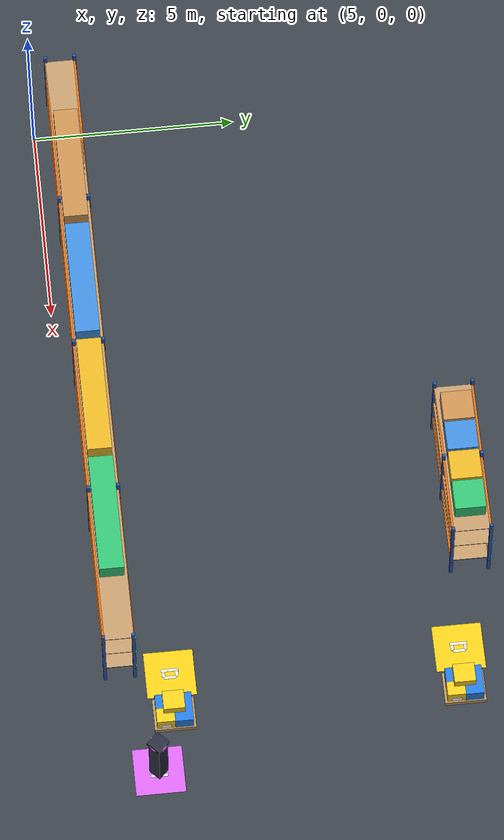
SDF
<sdf version="1.10">
 <world name="warehouse_s1">
  <model name="ground_plane">
   <static>true</static>
   <link name="link">
    <collision name="collision">
     <geometry><plane><normal>0 0 1</normal><size>25 20</size></plane></geometry>
    </collision>
    <visual name="visual">
     <geometry><plane><normal>0 0 1</normal><size>25 20</size></plane></geometry>
     <material>
      <ambient>0.22 0.25 0.28 1</ambient>
      <diffuse>0.22 0.25 0.28 1</diffuse>
      <specular>0.08 0.08 0.08 1</specular>
     </material>
    </visual>
    <pose>12.0 9.5 0 0 0 0</pose>
   </link>
  </model>
  <model name="pad_s1_dropoff_1">
   <static>true</static>
   <pose>20.000 2.000 0.003 0 0 0</pose>
   <link name="link">
    <visual name="pad_surface">
     <geometry><box><size>1.10 1.10 0.004</size></box></geometry>
     <material>
      <ambient>0.65 0.35 0.05 1</ambient>
      <diffuse>0.90 0.55 0.08 1</diffuse>
      <specular>0.4 0.4 0.4 1</specular>
     </material>
    </visual>
    <visual name="pad_border">
     <pose>0 0 0.002 0 0 0</pose>
     <geometry><box><size>1.20 1.20 0.002</size></box></geometry>
     <material><ambient>0.98 0.75 0.08 1</ambient><diffuse>1.0 0.80 0.10 1</diffuse></material>
    </visual>
    <visual name="stencil_d_vert">
     <pose>-0.10 0 0.005 0 0 0</pose>
     <geometry><box><size>0.07 0.42 0.003</size></box></geometry>
     <material><ambient>1 1 1 1</ambient><diffuse>1 1 1 1</diffuse><specular>0.5 0.5 0.5 1</specular></material>
    </visual>
    <visual name="stencil_d_top">
     <pose>0.0 0.16 0.005 0 0 0</pose>
     <geometry><box><size>0.15 0.07 0.003</size></box></geometry>
     <material><ambient>1 1 1 1</ambient><diffuse>1 1 1 1</diffuse><specular>0.5 0.5 0.5 1</specular></material>
    </visual>
    <visual name="stencil_d_bot">
     <pose>0.0 -0.16 0.005 0 0 0</pose>
     <geometry><box><size>0.15 0.07 0.003</size></box></geometry>
     <material><ambient>1 1 1 1</ambient><diffuse>1 1 1 1</diffuse><specular>0.5 0.5 0.5 1</specular></material>
    </visual>
    <visual name="stencil_d_right">
     <pose>0.09 0 0.005 0 0 0</pose>
     <geometry><box><size>0.07 0.30 0.003</size></box></geometry>
     <material><ambient>1 1 1 1</ambient><diffuse>1 1 1 1</diffuse><specular>0.5 0.5 0.5 1</specular></material>
    </visual>
   </link>
  </model>
  <model name="s1_cargo_dropoff_1">
   <static>true</static>
   <pose>21.100 2.000 0.0 0 0 0.0000</pose>
   <link name="link">
    <visual name="pallet_base">
     <pose>0 0 0.07 0 0 0</pose>
     <geometry><box><size>0.80 1.00 0.14</size></box></geometry>
     <material><ambient>0.58 0.46 0.30 1</ambient><diffuse>0.72 0.58 0.38 1</diffuse></material>
    </visual>
    <visual name="box_ll">
     <pose>-0.18 -0.22 0.32 0 0 0</pose>
     <geometry><box><size>0.36 0.44 0.36</size></box></geometry>
     <material>
      <ambient>0.12 0.38 0.72 1</ambient>
      <diffuse>0.15 0.48 0.88 1</diffuse>
      <specular>0.3 0.3 0.3 1</specular>
     </material>
    </visual>
    <visual name="box_lr">
     <pose>0.18 -0.22 0.32 0 0 0</pose>
     <geometry><box><size>0.36 0.44 0.36</size></box></geometry>
     <material><ambient>0.88 0.70 0.08 1</ambient><diffuse>0.96 0.80 0.12 1</diffuse></material>
    </visual>
    <visual name="box_top">
     <pose>0 0.22 0.32 0 0 0</pose>
     <geometry><box><size>0.74 0.44 0.36</size></box></geometry>
     <material>
      <ambient>0.12 0.38 0.72 1</ambient>
      <diffuse>0.15 0.48 0.88 1</diffuse>
      <specular>0.3 0.3 0.3 1</specular>
     </material>
    </visual>
    <visual name="box_upper">
     <pose>-0.10 0.0 0.62 0 0 0</pose>
     <geometry><box><size>0.48 0.52 0.24</size></box></geometry>
     <material><ambient>0.88 0.70 0.08 1</ambient><diffuse>0.96 0.80 0.12 1</diffuse></material>
    </visual>
    <visual name="placard">
     <pose>0.402 -0.22 0.32 0 0 0</pose>
     <geometry><box><size>0.005 0.24 0.16</size></box></geometry>
     <material><ambient>0.95 0.95 0.95 1</ambient><diffuse>0.98 0.98 0.98 1</diffuse></material>
    </visual>
   </link>
  </model>
  <model name="pad_s1_dropoff_3">
   <static>true</static>
   <pose>20.000 9.000 0.003 0 0 0</pose>
   <link name="link">
    <visual name="pad_surface">
     <geometry><box><size>1.10 1.10 0.004</size></box></geometry>
     <material>
      <ambient>0.65 0.35 0.05 1</ambient>
      <diffuse>0.90 0.55 0.08 1</diffuse>
      <specular>0.4 0.4 0.4 1</specular>
     </material>
    </visual>
    <visual name="pad_border">
     <pose>0 0 0.002 0 0 0</pose>
     <geometry><box><size>1.20 1.20 0.002</size></box></geometry>
     <material><ambient>0.98 0.75 0.08 1</ambient><diffuse>1.0 0.80 0.10 1</diffuse></material>
    </visual>
    <visual name="stencil_d_vert">
     <pose>-0.10 0 0.005 0 0 0</pose>
     <geometry><box><size>0.07 0.42 0.003</size></box></geometry>
     <material><ambient>1 1 1 1</ambient><diffuse>1 1 1 1</diffuse><specular>0.5 0.5 0.5 1</specular></material>
    </visual>
    <visual name="stencil_d_top">
     <pose>0.0 0.16 0.005 0 0 0</pose>
     <geometry><box><size>0.15 0.07 0.003</size></box></geometry>
     <material><ambient>1 1 1 1</ambient><diffuse>1 1 1 1</diffuse><specular>0.5 0.5 0.5 1</specular></material>
    </visual>
    <visual name="stencil_d_bot">
     <pose>0.0 -0.16 0.005 0 0 0</pose>
     <geometry><box><size>0.15 0.07 0.003</size></box></geometry>
     <material><ambient>1 1 1 1</ambient><diffuse>1 1 1 1</diffuse><specular>0.5 0.5 0.5 1</specular></material>
    </visual>
    <visual name="stencil_d_right">
     <pose>0.09 0 0.005 0 0 0</pose>
     <geometry><box><size>0.07 0.30 0.003</size></box></geometry>
     <material><ambient>1 1 1 1</ambient><diffuse>1 1 1 1</diffuse><specular>0.5 0.5 0.5 1</specular></material>
    </visual>
   </link>
  </model>
  <model name="s1_cargo_dropoff_3">
   <static>true</static>
   <pose>21.100 9.000 0.0 0 0 0.0000</pose>
   <link name="link">
    <visual name="pallet_base">
     <pose>0 0 0.07 0 0 0</pose>
     <geometry><box><size>0.80 1.00 0.14</size></box></geometry>
     <material><ambient>0.58 0.46 0.30 1</ambient><diffuse>0.72 0.58 0.38 1</diffuse></material>
    </visual>
    <visual name="box_ll">
     <pose>-0.18 -0.22 0.32 0 0 0</pose>
     <geometry><box><size>0.36 0.44 0.36</size></box></geometry>
     <material>
      <ambient>0.12 0.38 0.72 1</ambient>
      <diffuse>0.15 0.48 0.88 1</diffuse>
      <specular>0.3 0.3 0.3 1</specular>
     </material>
    </visual>
    <visual name="box_lr">
     <pose>0.18 -0.22 0.32 0 0 0</pose>
     <geometry><box><size>0.36 0.44 0.36</size></box></geometry>
     <material><ambient>0.88 0.70 0.08 1</ambient><diffuse>0.96 0.80 0.12 1</diffuse></material>
    </visual>
    <visual name="box_top">
     <pose>0 0.22 0.32 0 0 0</pose>
     <geometry><box><size>0.74 0.44 0.36</size></box></geometry>
     <material>
      <ambient>0.12 0.38 0.72 1</ambient>
      <diffuse>0.15 0.48 0.88 1</diffuse>
      <specular>0.3 0.3 0.3 1</specular>
     </material>
    </visual>
    <visual name="box_upper">
     <pose>-0.10 0.0 0.62 0 0 0</pose>
     <geometry><box><size>0.48 0.52 0.24</size></box></geometry>
     <material><ambient>0.88 0.70 0.08 1</ambient><diffuse>0.96 0.80 0.12 1</diffuse></material>
    </visual>
    <visual name="placard">
     <pose>0.402 -0.22 0.32 0 0 0</pose>
     <geometry><box><size>0.005 0.24 0.16</size></box></geometry>
     <material><ambient>0.95 0.95 0.95 1</ambient><diffuse>0.98 0.98 0.98 1</diffuse></material>
    </visual>
   </link>
  </model>
  <model name="pad_s1_charge_se">
   <static>true</static>
   <pose>22.500 1.500 0.003 0 0 0</pose>
   <link name="link">
    <visual name="pad_surface">
     <geometry><box><size>1.10 1.10 0.004</size></box></geometry>
     <material>
      <ambient>0.40 0.15 0.65 1</ambient>
      <diffuse>0.65 0.25 0.95 1</diffuse>
      <specular>0.5 0.5 0.5 1</specular>
     </material>
    </visual>
    <visual name="pad_border">
     <pose>0 0 0.002 0 0 0</pose>
     <geometry><box><size>1.20 1.20 0.002</size></box></geometry>
     <material><ambient>0.80 0.35 1.0 1</ambient><diffuse>0.85 0.40 1.0 1</diffuse></material>
    </visual>
    <visual name="stencil_h_left">
     <pose>-0.12 0 0.005 0 0 0</pose>
     <geometry><box><size>0.07 0.42 0.003</size></box></geometry>
     <material><ambient>1 1 1 1</ambient><diffuse>1 1 1 1</diffuse><specular>0.5 0.5 0.5 1</specular></material>
    </visual>
    <visual name="stencil_h_right">
     <pose>0.12 0 0.005 0 0 0</pose>
     <geometry><box><size>0.07 0.42 0.003</size></box></geometry>
     <material><ambient>1 1 1 1</ambient><diffuse>1 1 1 1</diffuse><specular>0.5 0.5 0.5 1</specular></material>
    </visual>
    <visual name="stencil_h_mid">
     <pose>0 0 0.005 0 0 0</pose>
     <geometry><box><size>0.22 0.07 0.003</size></box></geometry>
     <material><ambient>1 1 1 1</ambient><diffuse>1 1 1 1</diffuse><specular>0.5 0.5 0.5 1</specular></material>
    </visual>
   </link>
  </model>
  <model name="kiosk_s1_charge_se">
   <static>true</static>
   <pose>22.500 1.500 0.0 0 0 -2.3560</pose>
   <link name="link">
    <visual name="pillar">
     <pose>0 0 0.80 0 0 0</pose>
     <geometry><box><size>0.32 0.32 1.60</size></box></geometry>
     <material>
      <ambient>0.12 0.14 0.18 1</ambient>
      <diffuse>0.16 0.18 0.24 1</diffuse>
      <specular>0.4 0.4 0.4 1</specular>
     </material>
    </visual>
    <visual name="cap">
     <pose>0 0 1.64 0 0 0</pose>
     <geometry><box><size>0.38 0.38 0.08</size></box></geometry>
     <material>
      <ambient>0.12 0.14 0.18 1</ambient>
      <diffuse>0.16 0.18 0.24 1</diffuse>
      <specular>0.4 0.4 0.4 1</specular>
     </material>
    </visual>
    <visual name="halo_ring">
     <pose>0 0 1.61 0 0 0</pose>
     <geometry><cylinder><radius>0.22</radius><length>0.05</length></cylinder></geometry>
     <material>
      <ambient>0.75 0.25 0.95 1</ambient>
      <diffuse>0.85 0.35 1.0 1</diffuse>
      <specular>1 1 1 1</specular>
     </material>
    </visual>
    <visual name="screen">
     <pose>0.162 0 1.10 0 0 0</pose>
     <geometry><box><size>0.008 0.22 0.32</size></box></geometry>
     <material>
      <ambient>0.0 0.85 1.0 1</ambient>
      <diffuse>0.0 0.95 1.0 1</diffuse>
      <specular>0.8 0.8 0.8 1</specular>
     </material>
    </visual>
   </link>
  </model>
  <model name="s1_rack_center_right">
   <static>true</static>
   <pose>16.000 9.500 0.000 0 0 0.0000</pose>
   <link name="link">
    <visual name="post_1">
     <pose>-1.960 -0.460 1.200 0 0 0</pose>
     <geometry><box><size>0.08 0.08 2.400</size></box></geometry>
     <material>
      <ambient>0.10 0.20 0.45 1</ambient>
      <diffuse>0.15 0.32 0.68 1</diffuse>
      <specular>0.3 0.3 0.3 1</specular>
     </material>
    </visual>
    <visual name="post_2">
     <pose>-1.960 0.460 1.200 0 0 0</pose>
     <geometry><box><size>0.08 0.08 2.400</size></box></geometry>
     <material>
      <ambient>0.10 0.20 0.45 1</ambient>
      <diffuse>0.15 0.32 0.68 1</diffuse>
      <specular>0.3 0.3 0.3 1</specular>
     </material>
    </visual>
    <visual name="post_3">
     <pose>1.960 -0.460 1.200 0 0 0</pose>
     <geometry><box><size>0.08 0.08 2.400</size></box></geometry>
     <material>
      <ambient>0.10 0.20 0.45 1</ambient>
      <diffuse>0.15 0.32 0.68 1</diffuse>
      <specular>0.3 0.3 0.3 1</specular>
     </material>
    </visual>
    <visual name="post_4">
     <pose>1.960 0.460 1.200 0 0 0</pose>
     <geometry><box><size>0.08 0.08 2.400</size></box></geometry>
     <material>
      <ambient>0.10 0.20 0.45 1</ambient>
      <diffuse>0.15 0.32 0.68 1</diffuse>
      <specular>0.3 0.3 0.3 1</specular>
     </material>
    </visual>
    <visual name="post_5">
     <pose>0.000 -0.460 1.200 0 0 0</pose>
     <geometry><box><size>0.08 0.08 2.400</size></box></geometry>
     <material>
      <ambient>0.10 0.20 0.45 1</ambient>
      <diffuse>0.15 0.32 0.68 1</diffuse>
      <specular>0.3 0.3 0.3 1</specular>
     </material>
    </visual>
    <visual name="post_6">
     <pose>0.000 0.460 1.200 0 0 0</pose>
     <geometry><box><size>0.08 0.08 2.400</size></box></geometry>
     <material>
      <ambient>0.10 0.20 0.45 1</ambient>
      <diffuse>0.15 0.32 0.68 1</diffuse>
      <specular>0.3 0.3 0.3 1</specular>
     </material>
    </visual>
    <visual name="beam_front_1">
     <pose>0 -0.460 0.550 0 0 0</pose>
     <geometry><box><size>4.000 0.05 0.08</size></box></geometry>
     <material>
      <ambient>0.85 0.35 0.05 1</ambient>
      <diffuse>0.95 0.45 0.08 1</diffuse>
      <specular>0.2 0.2 0.2 1</specular>
     </material>
    </visual>
    <visual name="beam_back_1">
     <pose>0 0.460 0.550 0 0 0</pose>
     <geometry><box><size>4.000 0.05 0.08</size></box></geometry>
     <material>
      <ambient>0.85 0.35 0.05 1</ambient>
      <diffuse>0.95 0.45 0.08 1</diffuse>
      <specular>0.2 0.2 0.2 1</specular>
     </material>
    </visual>
    <visual name="deck_1">
     <pose>0 0 0.580 0 0 0</pose>
     <geometry><box><size>3.900 0.940 0.02</size></box></geometry>
     <material>
      <ambient>0.60 0.48 0.32 1</ambient>
      <diffuse>0.75 0.60 0.42 1</diffuse>
      <specular>0.1 0.1 0.1 1</specular>
     </material>
    </visual>
    <visual name="cargo_t1_b1">
     <pose>-1.200 0 0.825 0 0 0</pose>
     <geometry><box><size>0.750 0.750 0.450</size></box></geometry>
     <material><ambient>0.75 0.55 0.10 1</ambient><diffuse>0.90 0.70 0.15 1</diffuse></material>
    </visual>
    <visual name="cargo_t1_b2">
     <pose>-0.400 0 0.825 0 0 0</pose>
     <geometry><box><size>0.750 0.750 0.450</size></box></geometry>
     <material><ambient>0.15 0.60 0.35 1</ambient><diffuse>0.20 0.75 0.45 1</diffuse></material>
    </visual>
    <visual name="cargo_t1_b3">
     <pose>0.400 0 0.825 0 0 0</pose>
     <geometry><box><size>0.750 0.750 0.450</size></box></geometry>
     <material><ambient>0.65 0.45 0.25 1</ambient><diffuse>0.78 0.56 0.32 1</diffuse></material>
    </visual>
    <visual name="cargo_t1_b4">
     <pose>1.200 0 0.825 0 0 0</pose>
     <geometry><box><size>0.750 0.750 0.450</size></box></geometry>
     <material><ambient>0.20 0.45 0.70 1</ambient><diffuse>0.25 0.55 0.85 1</diffuse></material>
    </visual>
    <visual name="led_indicator_1">
     <pose>1.960 0.500 0.600 0 0 0</pose>
     <geometry><sphere><radius>0.035</radius></sphere></geometry>
     <material>
      <ambient>0.0 0.85 1.0 1</ambient>
      <diffuse>0.0 0.95 1.0 1</diffuse>
      <specular>1 1 1 1</specular>
     </material>
    </visual>
    <visual name="beam_front_2">
     <pose>0 -0.460 1.350 0 0 0</pose>
     <geometry><box><size>4.000 0.05 0.08</size></box></geometry>
     <material>
      <ambient>0.85 0.35 0.05 1</ambient>
      <diffuse>0.95 0.45 0.08 1</diffuse>
      <specular>0.2 0.2 0.2 1</specular>
     </material>
    </visual>
    <visual name="beam_back_2">
     <pose>0 0.460 1.350 0 0 0</pose>
     <geometry><box><size>4.000 0.05 0.08</size></box></geometry>
     <material>
      <ambient>0.85 0.35 0.05 1</ambient>
      <diffuse>0.95 0.45 0.08 1</diffuse>
      <specular>0.2 0.2 0.2 1</specular>
     </material>
    </visual>
    <visual name="deck_2">
     <pose>0 0 1.380 0 0 0</pose>
     <geometry><box><size>3.900 0.940 0.02</size></box></geometry>
     <material>
      <ambient>0.60 0.48 0.32 1</ambient>
      <diffuse>0.75 0.60 0.42 1</diffuse>
      <specular>0.1 0.1 0.1 1</specular>
     </material>
    </visual>
    <visual name="cargo_t2_b1">
     <pose>-1.200 0 1.625 0 0 0</pose>
     <geometry><box><size>0.750 0.750 0.450</size></box></geometry>
     <material><ambient>0.15 0.60 0.35 1</ambient><diffuse>0.20 0.75 0.45 1</diffuse></material>
    </visual>
    <visual name="cargo_t2_b2">
     <pose>-0.400 0 1.625 0 0 0</pose>
     <geometry><box><size>0.750 0.750 0.450</size></box></geometry>
     <material><ambient>0.65 0.45 0.25 1</ambient><diffuse>0.78 0.56 0.32 1</diffuse></material>
    </visual>
    <visual name="cargo_t2_b3">
     <pose>0.400 0 1.625 0 0 0</pose>
     <geometry><box><size>0.750 0.750 0.450</size></box></geometry>
     <material><ambient>0.20 0.45 0.70 1</ambient><diffuse>0.25 0.55 0.85 1</diffuse></material>
    </visual>
    <visual name="cargo_t2_b4">
     <pose>1.200 0 1.625 0 0 0</pose>
     <geometry><box><size>0.750 0.750 0.450</size></box></geometry>
     <material><ambient>0.75 0.55 0.10 1</ambient><diffuse>0.90 0.70 0.15 1</diffuse></material>
    </visual>
    <visual name="led_indicator_2">
     <pose>1.960 0.500 1.400 0 0 0</pose>
     <geometry><sphere><radius>0.035</radius></sphere></geometry>
     <material>
      <ambient>0.0 0.85 1.0 1</ambient>
      <diffuse>0.0 0.95 1.0 1</diffuse>
      <specular>1 1 1 1</specular>
     </material>
    </visual>
    <visual name="beam_front_3">
     <pose>0 -0.460 2.150 0 0 0</pose>
     <geometry><box><size>4.000 0.05 0.08</size></box></geometry>
     <material>
      <ambient>0.85 0.35 0.05 1</ambient>
      <diffuse>0.95 0.45 0.08 1</diffuse>
      <specular>0.2 0.2 0.2 1</specular>
     </material>
    </visual>
    <visual name="beam_back_3">
     <pose>0 0.460 2.150 0 0 0</pose>
     <geometry><box><size>4.000 0.05 0.08</size></box></geometry>
     <material>
      <ambient>0.85 0.35 0.05 1</ambient>
      <diffuse>0.95 0.45 0.08 1</diffuse>
      <specular>0.2 0.2 0.2 1</specular>
     </material>
    </visual>
    <visual name="deck_3">
     <pose>0 0 2.180 0 0 0</pose>
     <geometry><box><size>3.900 0.940 0.02</size></box></geometry>
     <material>
      <ambient>0.60 0.48 0.32 1</ambient>
      <diffuse>0.75 0.60 0.42 1</diffuse>
      <specular>0.1 0.1 0.1 1</specular>
     </material>
    </visual>
    <visual name="cargo_t3_b1">
     <pose>-1.200 0 2.425 0 0 0</pose>
     <geometry><box><size>0.750 0.750 0.450</size></box></geometry>
     <material><ambient>0.65 0.45 0.25 1</ambient><diffuse>0.78 0.56 0.32 1</diffuse></material>
    </visual>
    <visual name="cargo_t3_b2">
     <pose>-0.400 0 2.425 0 0 0</pose>
     <geometry><box><size>0.750 0.750 0.450</size></box></geometry>
     <material><ambient>0.20 0.45 0.70 1</ambient><diffuse>0.25 0.55 0.85 1</diffuse></material>
    </visual>
    <visual name="cargo_t3_b3">
     <pose>0.400 0 2.425 0 0 0</pose>
     <geometry><box><size>0.750 0.750 0.450</size></box></geometry>
     <material><ambient>0.75 0.55 0.10 1</ambient><diffuse>0.90 0.70 0.15 1</diffuse></material>
    </visual>
    <visual name="cargo_t3_b4">
     <pose>1.200 0 2.425 0 0 0</pose>
     <geometry><box><size>0.750 0.750 0.450</size></box></geometry>
     <material><ambient>0.15 0.60 0.35 1</ambient><diffuse>0.20 0.75 0.45 1</diffuse></material>
    </visual>
    <visual name="led_indicator_3">
     <pose>1.960 0.500 2.200 0 0 0</pose>
     <geometry><sphere><radius>0.035</radius></sphere></geometry>
     <material>
      <ambient>0.0 0.85 1.0 1</ambient>
      <diffuse>0.0 0.95 1.0 1</diffuse>
      <specular>1 1 1 1</specular>
     </material>
    </visual>
   </link>
  </model>
  <model name="s1_rack_south">
   <static>true</static>
   <pose>12.000 0.800 0.000 0 0 0.0000</pose>
   <link name="link">
    <visual name="post_1">
     <pose>-7.960 -0.360 1.200 0 0 0</pose>
     <geometry><box><size>0.08 0.08 2.400</size></box></geometry>
     <material>
      <ambient>0.10 0.20 0.45 1</ambient>
      <diffuse>0.15 0.32 0.68 1</diffuse>
      <specular>0.3 0.3 0.3 1</specular>
     </material>
    </visual>
    <visual name="post_2">
     <pose>-7.960 0.360 1.200 0 0 0</pose>
     <geometry><box><size>0.08 0.08 2.400</size></box></geometry>
     <material>
      <ambient>0.10 0.20 0.45 1</ambient>
      <diffuse>0.15 0.32 0.68 1</diffuse>
      <specular>0.3 0.3 0.3 1</specular>
     </material>
    </visual>
    <visual name="post_3">
     <pose>7.960 -0.360 1.200 0 0 0</pose>
     <geometry><box><size>0.08 0.08 2.400</size></box></geometry>
     <material>
      <ambient>0.10 0.20 0.45 1</ambient>
      <diffuse>0.15 0.32 0.68 1</diffuse>
      <specular>0.3 0.3 0.3 1</specular>
     </material>
    </visual>
    <visual name="post_4">
     <pose>7.960 0.360 1.200 0 0 0</pose>
     <geometry><box><size>0.08 0.08 2.400</size></box></geometry>
     <material>
      <ambient>0.10 0.20 0.45 1</ambient>
      <diffuse>0.15 0.32 0.68 1</diffuse>
      <specular>0.3 0.3 0.3 1</specular>
     </material>
    </visual>
    <visual name="post_5">
     <pose>0.000 -0.360 1.200 0 0 0</pose>
     <geometry><box><size>0.08 0.08 2.400</size></box></geometry>
     <material>
      <ambient>0.10 0.20 0.45 1</ambient>
      <diffuse>0.15 0.32 0.68 1</diffuse>
      <specular>0.3 0.3 0.3 1</specular>
     </material>
    </visual>
    <visual name="post_6">
     <pose>0.000 0.360 1.200 0 0 0</pose>
     <geometry><box><size>0.08 0.08 2.400</size></box></geometry>
     <material>
      <ambient>0.10 0.20 0.45 1</ambient>
      <diffuse>0.15 0.32 0.68 1</diffuse>
      <specular>0.3 0.3 0.3 1</specular>
     </material>
    </visual>
    <visual name="post_7">
     <pose>-3.980 -0.360 1.200 0 0 0</pose>
     <geometry><box><size>0.08 0.08 2.400</size></box></geometry>
     <material>
      <ambient>0.10 0.20 0.45 1</ambient>
      <diffuse>0.15 0.32 0.68 1</diffuse>
      <specular>0.3 0.3 0.3 1</specular>
     </material>
    </visual>
    <visual name="post_8">
     <pose>-3.980 0.360 1.200 0 0 0</pose>
     <geometry><box><size>0.08 0.08 2.400</size></box></geometry>
     <material>
      <ambient>0.10 0.20 0.45 1</ambient>
      <diffuse>0.15 0.32 0.68 1</diffuse>
      <specular>0.3 0.3 0.3 1</specular>
     </material>
    </visual>
    <visual name="post_9">
     <pose>3.980 -0.360 1.200 0 0 0</pose>
     <geometry><box><size>0.08 0.08 2.400</size></box></geometry>
     <material>
      <ambient>0.10 0.20 0.45 1</ambient>
      <diffuse>0.15 0.32 0.68 1</diffuse>
      <specular>0.3 0.3 0.3 1</specular>
     </material>
    </visual>
    <visual name="post_10">
     <pose>3.980 0.360 1.200 0 0 0</pose>
     <geometry><box><size>0.08 0.08 2.400</size></box></geometry>
     <material>
      <ambient>0.10 0.20 0.45 1</ambient>
      <diffuse>0.15 0.32 0.68 1</diffuse>
      <specular>0.3 0.3 0.3 1</specular>
     </material>
    </visual>
    <visual name="beam_front_1">
     <pose>0 -0.360 0.550 0 0 0</pose>
     <geometry><box><size>16.000 0.05 0.08</size></box></geometry>
     <material>
      <ambient>0.85 0.35 0.05 1</ambient>
      <diffuse>0.95 0.45 0.08 1</diffuse>
      <specular>0.2 0.2 0.2 1</specular>
     </material>
    </visual>
    <visual name="beam_back_1">
     <pose>0 0.360 0.550 0 0 0</pose>
     <geometry><box><size>16.000 0.05 0.08</size></box></geometry>
     <material>
      <ambient>0.85 0.35 0.05 1</ambient>
      <diffuse>0.95 0.45 0.08 1</diffuse>
      <specular>0.2 0.2 0.2 1</specular>
     </material>
    </visual>
    <visual name="deck_1">
     <pose>0 0 0.580 0 0 0</pose>
     <geometry><box><size>15.900 0.740 0.02</size></box></geometry>
     <material>
      <ambient>0.60 0.48 0.32 1</ambient>
      <diffuse>0.75 0.60 0.42 1</diffuse>
      <specular>0.1 0.1 0.1 1</specular>
     </material>
    </visual>
    <visual name="cargo_t1_b1">
     <pose>-4.800 0 0.825 0 0 0</pose>
     <geometry><box><size>3.000 0.600 0.450</size></box></geometry>
     <material><ambient>0.75 0.55 0.10 1</ambient><diffuse>0.90 0.70 0.15 1</diffuse></material>
    </visual>
    <visual name="cargo_t1_b2">
     <pose>-1.600 0 0.825 0 0 0</pose>
     <geometry><box><size>3.000 0.600 0.450</size></box></geometry>
     <material><ambient>0.15 0.60 0.35 1</ambient><diffuse>0.20 0.75 0.45 1</diffuse></material>
    </visual>
    <visual name="cargo_t1_b3">
     <pose>1.600 0 0.825 0 0 0</pose>
     <geometry><box><size>3.000 0.600 0.450</size></box></geometry>
     <material><ambient>0.65 0.45 0.25 1</ambient><diffuse>0.78 0.56 0.32 1</diffuse></material>
    </visual>
    <visual name="cargo_t1_b4">
     <pose>4.800 0 0.825 0 0 0</pose>
     <geometry><box><size>3.000 0.600 0.450</size></box></geometry>
     <material><ambient>0.20 0.45 0.70 1</ambient><diffuse>0.25 0.55 0.85 1</diffuse></material>
    </visual>
    <visual name="led_indicator_1">
     <pose>7.960 0.400 0.600 0 0 0</pose>
     <geometry><sphere><radius>0.035</radius></sphere></geometry>
     <material>
      <ambient>0.0 0.85 1.0 1</ambient>
      <diffuse>0.0 0.95 1.0 1</diffuse>
      <specular>1 1 1 1</specular>
     </material>
    </visual>
    <visual name="beam_front_2">
     <pose>0 -0.360 1.350 0 0 0</pose>
     <geometry><box><size>16.000 0.05 0.08</size></box></geometry>
     <material>
      <ambient>0.85 0.35 0.05 1</ambient>
      <diffuse>0.95 0.45 0.08 1</diffuse>
      <specular>0.2 0.2 0.2 1</specular>
     </material>
    </visual>
    <visual name="beam_back_2">
     <pose>0 0.360 1.350 0 0 0</pose>
     <geometry><box><size>16.000 0.05 0.08</size></box></geometry>
     <material>
      <ambient>0.85 0.35 0.05 1</ambient>
      <diffuse>0.95 0.45 0.08 1</diffuse>
      <specular>0.2 0.2 0.2 1</specular>
     </material>
    </visual>
    <visual name="deck_2">
     <pose>0 0 1.380 0 0 0</pose>
     <geometry><box><size>15.900 0.740 0.02</size></box></geometry>
     <material>
      <ambient>0.60 0.48 0.32 1</ambient>
      <diffuse>0.75 0.60 0.42 1</diffuse>
      <specular>0.1 0.1 0.1 1</specular>
     </material>
    </visual>
    <visual name="cargo_t2_b1">
     <pose>-4.800 0 1.625 0 0 0</pose>
     <geometry><box><size>3.000 0.600 0.450</size></box></geometry>
     <material><ambient>0.15 0.60 0.35 1</ambient><diffuse>0.20 0.75 0.45 1</diffuse></material>
    </visual>
    <visual name="cargo_t2_b2">
     <pose>-1.600 0 1.625 0 0 0</pose>
     <geometry><box><size>3.000 0.600 0.450</size></box></geometry>
     <material><ambient>0.65 0.45 0.25 1</ambient><diffuse>0.78 0.56 0.32 1</diffuse></material>
    </visual>
    <visual name="cargo_t2_b3">
     <pose>1.600 0 1.625 0 0 0</pose>
     <geometry><box><size>3.000 0.600 0.450</size></box></geometry>
     <material><ambient>0.20 0.45 0.70 1</ambient><diffuse>0.25 0.55 0.85 1</diffuse></material>
    </visual>
    <visual name="cargo_t2_b4">
     <pose>4.800 0 1.625 0 0 0</pose>
     <geometry><box><size>3.000 0.600 0.450</size></box></geometry>
     <material><ambient>0.75 0.55 0.10 1</ambient><diffuse>0.90 0.70 0.15 1</diffuse></material>
    </visual>
    <visual name="led_indicator_2">
     <pose>7.960 0.400 1.400 0 0 0</pose>
     <geometry><sphere><radius>0.035</radius></sphere></geometry>
     <material>
      <ambient>0.0 0.85 1.0 1</ambient>
      <diffuse>0.0 0.95 1.0 1</diffuse>
      <specular>1 1 1 1</specular>
     </material>
    </visual>
    <visual name="beam_front_3">
     <pose>0 -0.360 2.150 0 0 0</pose>
     <geometry><box><size>16.000 0.05 0.08</size></box></geometry>
     <material>
      <ambient>0.85 0.35 0.05 1</ambient>
      <diffuse>0.95 0.45 0.08 1</diffuse>
      <specular>0.2 0.2 0.2 1</specular>
     </material>
    </visual>
    <visual name="beam_back_3">
     <pose>0 0.360 2.150 0 0 0</pose>
     <geometry><box><size>16.000 0.05 0.08</size></box></geometry>
     <material>
      <ambient>0.85 0.35 0.05 1</ambient>
      <diffuse>0.95 0.45 0.08 1</diffuse>
      <specular>0.2 0.2 0.2 1</specular>
     </material>
    </visual>
    <visual name="deck_3">
     <pose>0 0 2.180 0 0 0</pose>
     <geometry><box><size>15.900 0.740 0.02</size></box></geometry>
     <material>
      <ambient>0.60 0.48 0.32 1</ambient>
      <diffuse>0.75 0.60 0.42 1</diffuse>
      <specular>0.1 0.1 0.1 1</specular>
     </material>
    </visual>
    <visual name="cargo_t3_b1">
     <pose>-4.800 0 2.425 0 0 0</pose>
     <geometry><box><size>3.000 0.600 0.450</size></box></geometry>
     <material><ambient>0.65 0.45 0.25 1</ambient><diffuse>0.78 0.56 0.32 1</diffuse></material>
    </visual>
    <visual name="cargo_t3_b2">
     <pose>-1.600 0 2.425 0 0 0</pose>
     <geometry><box><size>3.000 0.600 0.450</size></box></geometry>
     <material><ambient>0.20 0.45 0.70 1</ambient><diffuse>0.25 0.55 0.85 1</diffuse></material>
    </visual>
    <visual name="cargo_t3_b3">
     <pose>1.600 0 2.425 0 0 0</pose>
     <geometry><box><size>3.000 0.600 0.450</size></box></geometry>
     <material><ambient>0.75 0.55 0.10 1</ambient><diffuse>0.90 0.70 0.15 1</diffuse></material>
    </visual>
    <visual name="cargo_t3_b4">
     <pose>4.800 0 2.425 0 0 0</pose>
     <geometry><box><size>3.000 0.600 0.450</size></box></geometry>
     <material><ambient>0.15 0.60 0.35 1</ambient><diffuse>0.20 0.75 0.45 1</diffuse></material>
    </visual>
    <visual name="led_indicator_3">
     <pose>7.960 0.400 2.200 0 0 0</pose>
     <geometry><sphere><radius>0.035</radius></sphere></geometry>
     <material>
      <ambient>0.0 0.85 1.0 1</ambient>
      <diffuse>0.0 0.95 1.0 1</diffuse>
      <specular>1 1 1 1</specular>
     </material>
    </visual>
   </link>
  </model>
 </world>
</sdf>
